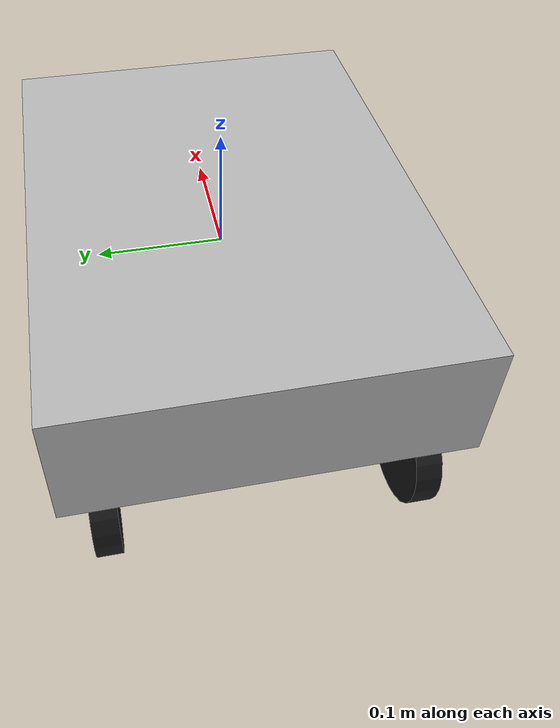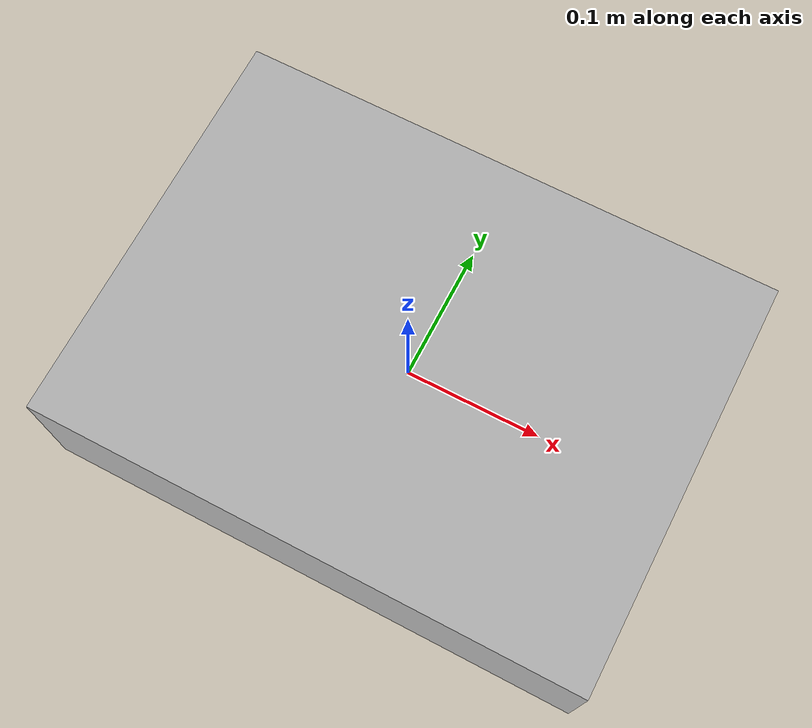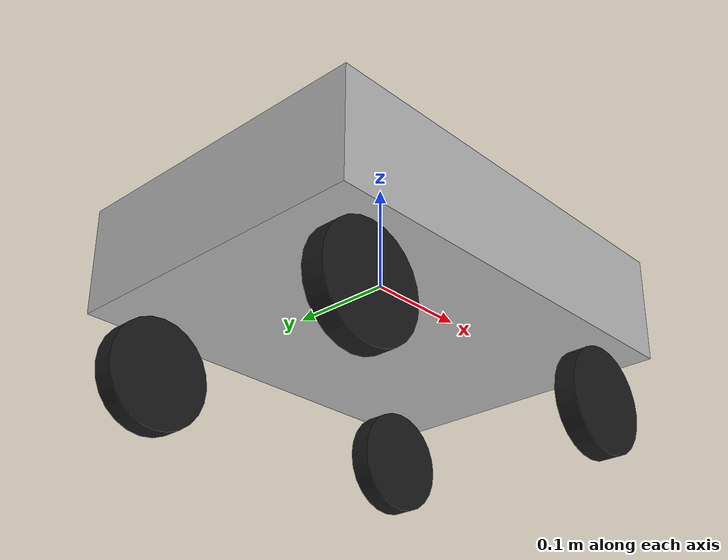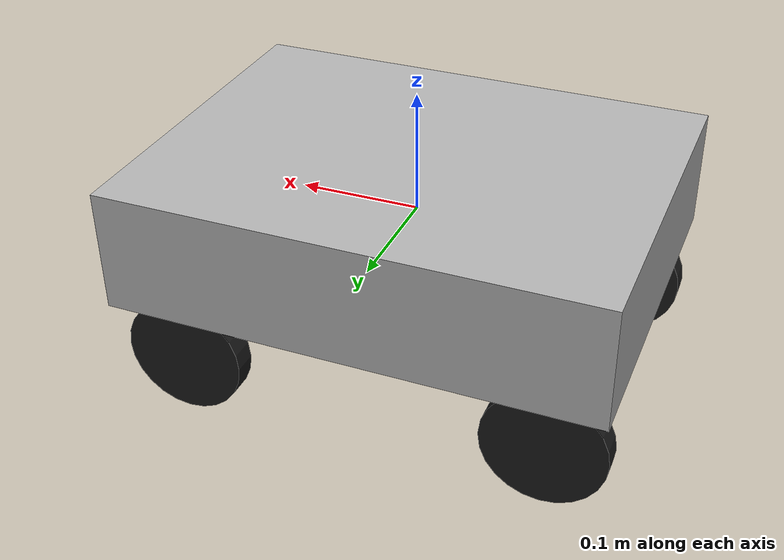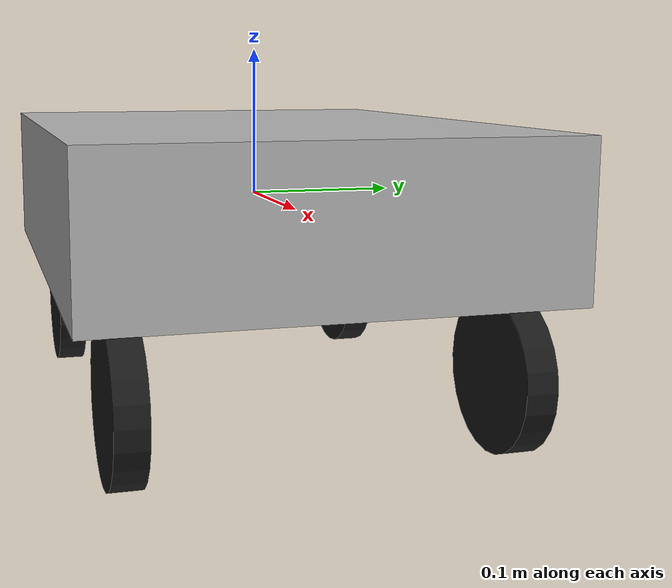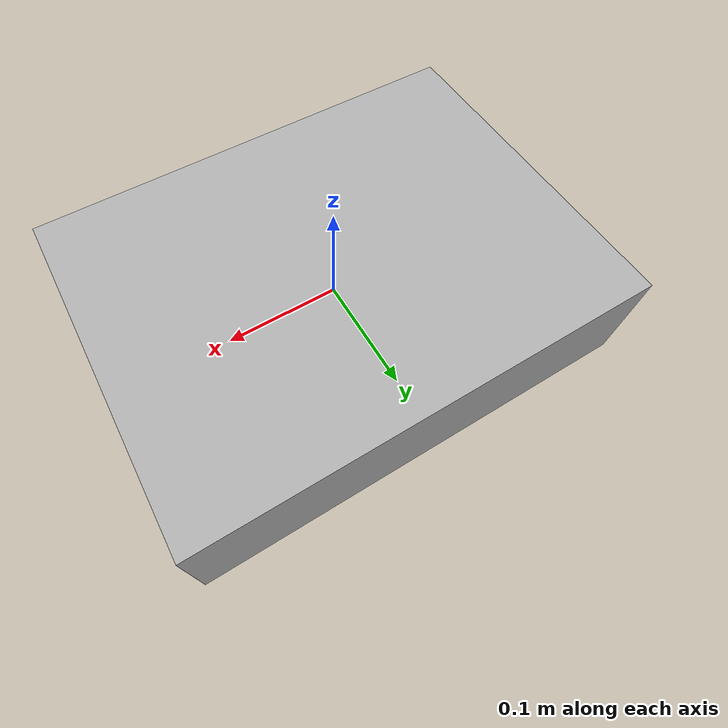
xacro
<?xml version="1.0"?>
<robot xmlns:xacro="http://ros.org/wiki/xacro" name="modular_mecanum_bot">

  <!-- Properties -->
  <xacro:property name="wheel_radius" value="0.05"/>
  <xacro:property name="wheel_width" value="0.02"/>
  <xacro:property name="body_length" value="0.4"/>
  <xacro:property name="body_width"  value="0.3"/>
  <xacro:property name="body_height" value="0.1"/>

  <!-- Base Link -->
  <link name="base_link">
    <visual>
      <geometry>
        <box size="${body_length} ${body_width} ${body_height}"/>
      </geometry>
      <material name="BodyGray">
        <color rgba="0.7 0.7 0.7 1.0"/>
      </material>
    </visual>
    <collision>
      <geometry>
        <box size="${body_length} ${body_width} ${body_height}"/>
      </geometry>
    </collision>
    <inertial>
      <mass value="2.0"/>
      <origin xyz="0 0 0" rpy="0 0 0"/>
      <inertia ixx="0.02" ixy="0.0" ixz="0.0" iyy="0.02" iyz="0.0" izz="0.02"/>
    </inertial>
  </link>

  <!-- Macro for wheels -->
  <xacro:macro name="wheel" params="name x y">
    <link name="${name}">
      <visual>
        <geometry>
          <cylinder radius="${wheel_radius}" length="${wheel_width}"/>
        </geometry>
        <origin rpy="1.5708 0 0" xyz="0 0 0"/>
        <material name="WheelBlack">
          <color rgba="0.1 0.1 0.1 1.0"/>
        </material>
      </visual>
      <collision>
        <geometry>
          <cylinder radius="${wheel_radius}" length="${wheel_width}"/>
        </geometry>
        <origin rpy="1.5708 0 0" xyz="0 0 0"/>
      </collision>
      <inertial>
        <mass value="0.2"/>
        <inertia ixx="0.001" ixy="0" ixz="0" iyy="0.001" iyz="0" izz="0.001"/>
      </inertial>
    </link>

    <joint name="${name}_joint" type="continuous">
      <parent link="base_link"/>
      <child link="${name}"/>
      <origin xyz="${x} ${y} -${body_height/2 + wheel_radius}" rpy="0 0 0"/>
      <axis xyz="0 1 0"/>
    </joint>
  </xacro:macro>

  <!-- Four Mecanum wheels -->
  <xacro:wheel name="front_left_wheel"  x="${ body_length / 2 - 0.05}" y="${ body_width / 2 - 0.03}"/>
  <xacro:wheel name="front_right_wheel" x="${ body_length / 2 - 0.05}" y="-${body_width / 2 - 0.03}"/>
  <xacro:wheel name="rear_left_wheel"   x="-${body_length / 2 - 0.05}" y="${ body_width / 2 - 0.03}"/>
  <xacro:wheel name="rear_right_wheel"  x="-${body_length / 2 - 0.05}" y="-${body_width / 2 - 0.03}"/>

  <ros2_control name="ModularBotHardware" type="system">
    <hardware>
      <plugin>gazebo_ros2_control/GazeboSystem</plugin>
    </hardware>

    <joint name="front_left_wheel_joint">
      <command_interface name="velocity"/>
      <state_interface name="velocity"/>
    </joint>
    <joint name="front_right_wheel_joint">
      <command_interface name="velocity"/>
      <state_interface name="velocity"/>
    </joint>
    <joint name="rear_left_wheel_joint">
      <command_interface name="velocity"/>
      <state_interface name="velocity"/>
    </joint>
    <joint name="rear_right_wheel_joint">
      <command_interface name="velocity"/>
      <state_interface name="velocity"/>
    </joint>
  </ros2_control>
</robot>
